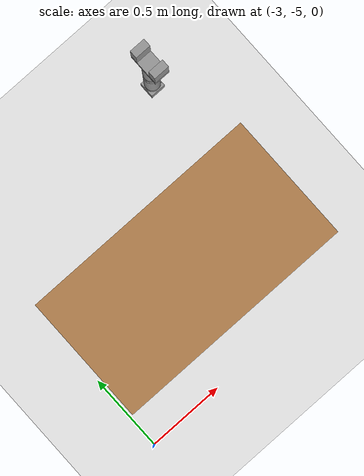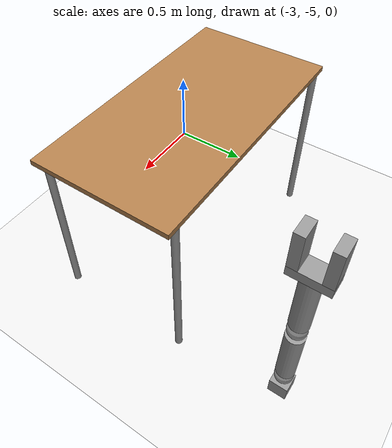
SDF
<sdf version="1.6">
 <world name="default">
  <model name="ground_plane">
   <static>1</static>
   <link name="link">
    <collision name="collision">
     <geometry><plane><normal>0 0 1</normal><size>100 100</size></plane></geometry>
     <surface>
      <contact><collide_bitmask>65535</collide_bitmask></contact>
      <friction><ode><mu>100</mu><mu2>50</mu2></ode></friction>
     </surface>
    </collision>
    <visual name="visual">
     <cast_shadows>0</cast_shadows>
     <geometry><plane><normal>0 0 1</normal><size>100 100</size></plane></geometry>
     <material>
      <script><uri>file://media/materials/scripts/gazebo.material</uri><name>Gazebo/White</name></script>
     </material>
    </visual>
   </link>
  </model>
  <model name="myrobotarm_clone">
   <link name="Base">
    <inertial>
     <mass>1</mass>
     <inertia>
      <ixx>0.166667</ixx>
      <ixy>0</ixy>
      <ixz>0</ixz>
      <iyy>0.166667</iyy>
      <iyz>0</iyz>
      <izz>0.166667</izz>
     </inertia>
    </inertial>
    <pose>1.29977 -2.48919 -0.073664 0 -0 0</pose>
    <visual name="visual">
     <geometry><box><size>0.1 0.1 0.1</size></box></geometry>
     <material>
      <lighting>1</lighting>
      <script><uri>file://media/materials/scripts/gazebo.material</uri><name>Gazebo/Grey</name></script>
      <shader type="pixel"><normal_map>__default__</normal_map></shader>
      <ambient>0.3 0.3 0.3 1</ambient>
      <diffuse>0.7 0.7 0.7 1</diffuse>
      <specular>0.01 0.01 0.01 1</specular>
      <emissive>0 0 0 1</emissive>
     </material>
    </visual>
    <collision name="collision">
     <geometry><box><size>0.1 0.1 0.1</size></box></geometry>
     <surface>
      <friction>
       <ode><mu>1</mu><mu2>1</mu2><fdir1>0 0 0</fdir1><slip1>0</slip1><slip2>0</slip2></ode>
       <torsional>
        <coefficient>1</coefficient>
        <patch_radius>0</patch_radius>
        <surface_radius>0</surface_radius>
        <use_patch_radius>1</use_patch_radius>
        <ode><slip>0</slip></ode>
       </torsional>
      </friction>
      <bounce><restitution_coefficient>0</restitution_coefficient><threshold>1e+06</threshold></bounce>
      <contact>
       <collide_without_contact>0</collide_without_contact>
       <collide_without_contact_bitmask>1</collide_without_contact_bitmask>
       <collide_bitmask>1</collide_bitmask>
       <ode>
        <soft_cfm>0</soft_cfm>
        <soft_erp>0.2</soft_erp>
        <kp>1e+13</kp>
        <kd>1</kd>
        <max_vel>0.01</max_vel>
        <min_depth>0</min_depth>
       </ode>
       <bullet>
        <split_impulse>1</split_impulse>
        <split_impulse_penetration_threshold>-0.01</split_impulse_penetration_threshold>
        <soft_cfm>0</soft_cfm>
        <soft_erp>0.2</soft_erp>
        <kp>1e+13</kp>
        <kd>1</kd>
       </bullet>
      </contact>
     </surface>
    </collision>
   </link>
   <link name="Base_hinge">
    <inertial>
     <mass>1</mass>
     <inertia><ixx>0.1</ixx><ixy>0</ixy><ixz>0</ixz><iyy>0.1</iyy><iyz>0</iyz><izz>0.1</izz></inertia>
    </inertial>
    <pose>1.29977 -2.48919 0.026336 0 -0 0</pose>
    <visual name="visual">
     <geometry><sphere><radius>0.05</radius></sphere></geometry>
     <material>
      <lighting>1</lighting>
      <script><uri>file://media/materials/scripts/gazebo.material</uri><name>Gazebo/Grey</name></script>
      <shader type="pixel"><normal_map>__default__</normal_map></shader>
      <ambient>0.3 0.3 0.3 1</ambient>
      <diffuse>0.7 0.7 0.7 1</diffuse>
      <specular>0.01 0.01 0.01 1</specular>
      <emissive>0 0 0 1</emissive>
     </material>
    </visual>
    <collision name="collision">
     <geometry><sphere><radius>0.05</radius></sphere></geometry>
     <surface>
      <friction>
       <ode><mu>1</mu><mu2>1</mu2><fdir1>0 0 0</fdir1><slip1>0</slip1><slip2>0</slip2></ode>
       <torsional>
        <coefficient>1</coefficient>
        <patch_radius>0</patch_radius>
        <surface_radius>0</surface_radius>
        <use_patch_radius>1</use_patch_radius>
        <ode><slip>0</slip></ode>
       </torsional>
      </friction>
      <bounce><restitution_coefficient>0</restitution_coefficient><threshold>1e+06</threshold></bounce>
      <contact>
       <collide_without_contact>0</collide_without_contact>
       <collide_without_contact_bitmask>1</collide_without_contact_bitmask>
       <collide_bitmask>1</collide_bitmask>
       <ode>
        <soft_cfm>0</soft_cfm>
        <soft_erp>0.2</soft_erp>
        <kp>1e+13</kp>
        <kd>1</kd>
        <max_vel>0.01</max_vel>
        <min_depth>0</min_depth>
       </ode>
       <bullet>
        <split_impulse>1</split_impulse>
        <split_impulse_penetration_threshold>-0.01</split_impulse_penetration_threshold>
        <soft_cfm>0</soft_cfm>
        <soft_erp>0.2</soft_erp>
        <kp>1e+13</kp>
        <kd>1</kd>
       </bullet>
      </contact>
     </surface>
    </collision>
   </link>
   <link name="Gripper_base">
    <inertial>
     <mass>1</mass>
     <inertia>
      <ixx>0.166667</ixx>
      <ixy>0</ixy>
      <ixz>0</ixz>
      <iyy>0.166667</iyy>
      <iyz>0</iyz>
      <izz>0.166667</izz>
     </inertia>
    </inertial>
    <pose>1.29977 -2.48919 0.901336 0 -0 0</pose>
    <visual name="visual">
     <geometry><box><size>0.1 0.2 0.05</size></box></geometry>
     <material>
      <lighting>1</lighting>
      <script><uri>file://media/materials/scripts/gazebo.material</uri><name>Gazebo/Grey</name></script>
      <shader type="vertex"><normal_map>__default__</normal_map></shader>
      <ambient>0.3 0.3 0.3 1</ambient>
      <diffuse>0.7 0.7 0.7 1</diffuse>
      <specular>0.01 0.01 0.01 1</specular>
      <emissive>0 0 0 1</emissive>
     </material>
    </visual>
    <collision name="collision">
     <geometry><box><size>0.1 0.2 0.05</size></box></geometry>
     <surface>
      <friction>
       <ode><mu>1</mu><mu2>1</mu2><fdir1>0 0 0</fdir1><slip1>0</slip1><slip2>0</slip2></ode>
       <torsional>
        <coefficient>1</coefficient>
        <patch_radius>0</patch_radius>
        <surface_radius>0</surface_radius>
        <use_patch_radius>1</use_patch_radius>
        <ode><slip>0</slip></ode>
       </torsional>
      </friction>
      <bounce><restitution_coefficient>0</restitution_coefficient><threshold>1e+06</threshold></bounce>
      <contact>
       <collide_without_contact>0</collide_without_contact>
       <collide_without_contact_bitmask>1</collide_without_contact_bitmask>
       <collide_bitmask>1</collide_bitmask>
       <ode>
        <soft_cfm>0</soft_cfm>
        <soft_erp>0.2</soft_erp>
        <kp>1e+13</kp>
        <kd>1</kd>
        <max_vel>0.01</max_vel>
        <min_depth>0</min_depth>
       </ode>
       <bullet>
        <split_impulse>1</split_impulse>
        <split_impulse_penetration_threshold>-0.01</split_impulse_penetration_threshold>
        <soft_cfm>0</soft_cfm>
        <soft_erp>0.2</soft_erp>
        <kp>1e+13</kp>
        <kd>1</kd>
       </bullet>
      </contact>
     </surface>
    </collision>
   </link>
   <link name="Gripper_left">
    <inertial>
     <mass>1</mass>
     <inertia>
      <ixx>0.166667</ixx>
      <ixy>0</ixy>
      <ixz>0</ixz>
      <iyy>0.166667</iyy>
      <iyz>0</iyz>
      <izz>0.166667</izz>
     </inertia>
    </inertial>
    <pose>1.29977 -2.41418 1.02633 -1.5707 0 0</pose>
    <visual name="visual_0">
     <geometry><box><size>0.1 0.2 0.05</size></box></geometry>
     <material>
      <lighting>1</lighting>
      <script><uri>file://media/materials/scripts/gazebo.material</uri><name>Gazebo/Grey</name></script>
      <shader type="vertex"><normal_map>__default__</normal_map></shader>
      <ambient>0.3 0.3 0.3 1</ambient>
      <diffuse>0.7 0.7 0.7 1</diffuse>
      <specular>0.01 0.01 0.01 1</specular>
      <emissive>0 0 0 1</emissive>
     </material>
    </visual>
    <collision name="collision">
     <geometry><box><size>0.1 0.2 0.05</size></box></geometry>
     <surface>
      <friction>
       <ode><mu>1</mu><mu2>1</mu2><fdir1>0 0 0</fdir1><slip1>0</slip1><slip2>0</slip2></ode>
       <torsional>
        <coefficient>1</coefficient>
        <patch_radius>0</patch_radius>
        <surface_radius>0</surface_radius>
        <use_patch_radius>1</use_patch_radius>
        <ode><slip>0</slip></ode>
       </torsional>
      </friction>
      <bounce><restitution_coefficient>0</restitution_coefficient><threshold>1e+06</threshold></bounce>
      <contact>
       <collide_without_contact>0</collide_without_contact>
       <collide_without_contact_bitmask>1</collide_without_contact_bitmask>
       <collide_bitmask>1</collide_bitmask>
       <ode>
        <soft_cfm>0</soft_cfm>
        <soft_erp>0.2</soft_erp>
        <kp>1e+13</kp>
        <kd>1</kd>
        <max_vel>0.01</max_vel>
        <min_depth>0</min_depth>
       </ode>
       <bullet>
        <split_impulse>1</split_impulse>
        <split_impulse_penetration_threshold>-0.01</split_impulse_penetration_threshold>
        <soft_cfm>0</soft_cfm>
        <soft_erp>0.2</soft_erp>
        <kp>1e+13</kp>
        <kd>1</kd>
       </bullet>
      </contact>
     </surface>
    </collision>
   </link>
   <link name="Gripper_right">
    <inertial>
     <mass>1</mass>
     <inertia>
      <ixx>0.166667</ixx>
      <ixy>0</ixy>
      <ixz>0</ixz>
      <iyy>0.166667</iyy>
      <iyz>0</iyz>
      <izz>0.166667</izz>
     </inertia>
    </inertial>
    <pose>1.29977 -2.56418 1.02633 1.5707 -0 0</pose>
    <visual name="visual_0">
     <geometry><box><size>0.1 0.2 0.05</size></box></geometry>
     <material>
      <lighting>1</lighting>
      <script><uri>file://media/materials/scripts/gazebo.material</uri><name>Gazebo/Grey</name></script>
      <shader type="vertex"><normal_map>__default__</normal_map></shader>
      <ambient>0.3 0.3 0.3 1</ambient>
      <diffuse>0.7 0.7 0.7 1</diffuse>
      <specular>0.01 0.01 0.01 1</specular>
      <emissive>0 0 0 1</emissive>
     </material>
    </visual>
    <collision name="collision">
     <geometry><box><size>0.1 0.2 0.05</size></box></geometry>
     <surface>
      <friction>
       <ode><mu>1</mu><mu2>1</mu2><fdir1>0 0 0</fdir1><slip1>0</slip1><slip2>0</slip2></ode>
       <torsional>
        <coefficient>1</coefficient>
        <patch_radius>0</patch_radius>
        <surface_radius>0</surface_radius>
        <use_patch_radius>1</use_patch_radius>
        <ode><slip>0</slip></ode>
       </torsional>
      </friction>
      <bounce><restitution_coefficient>0</restitution_coefficient><threshold>1e+06</threshold></bounce>
      <contact>
       <collide_without_contact>0</collide_without_contact>
       <collide_without_contact_bitmask>1</collide_without_contact_bitmask>
       <collide_bitmask>1</collide_bitmask>
       <ode>
        <soft_cfm>0</soft_cfm>
        <soft_erp>0.2</soft_erp>
        <kp>1e+13</kp>
        <kd>1</kd>
        <max_vel>0.01</max_vel>
        <min_depth>0</min_depth>
       </ode>
       <bullet>
        <split_impulse>1</split_impulse>
        <split_impulse_penetration_threshold>-0.01</split_impulse_penetration_threshold>
        <soft_cfm>0</soft_cfm>
        <soft_erp>0.2</soft_erp>
        <kp>1e+13</kp>
        <kd>1</kd>
       </bullet>
      </contact>
     </surface>
    </collision>
   </link>
   <link name="Section1">
    <inertial>
     <mass>1</mass>
     <inertia><ixx>0.145833</ixx><ixy>0</ixy><ixz>0</ixz><iyy>0.145833</iyy><iyz>0</iyz><izz>0.125</izz></inertia>
    </inertial>
    <pose>1.29977 -2.48919 0.251336 0 -0 0</pose>
    <visual name="visual">
     <geometry><cylinder><radius>0.05</radius><length>0.35</length></cylinder></geometry>
     <material>
      <lighting>1</lighting>
      <script><uri>file://media/materials/scripts/gazebo.material</uri><name>Gazebo/Grey</name></script>
      <shader type="pixel"><normal_map>__default__</normal_map></shader>
      <ambient>0.3 0.3 0.3 1</ambient>
      <diffuse>0.7 0.7 0.7 1</diffuse>
      <specular>0.01 0.01 0.01 1</specular>
      <emissive>0 0 0 1</emissive>
     </material>
    </visual>
    <collision name="collision">
     <geometry><cylinder><radius>0.05</radius><length>0.35</length></cylinder></geometry>
     <surface>
      <friction>
       <ode><mu>1</mu><mu2>1</mu2><fdir1>0 0 0</fdir1><slip1>0</slip1><slip2>0</slip2></ode>
       <torsional>
        <coefficient>1</coefficient>
        <patch_radius>0</patch_radius>
        <surface_radius>0</surface_radius>
        <use_patch_radius>1</use_patch_radius>
        <ode><slip>0</slip></ode>
       </torsional>
      </friction>
      <bounce><restitution_coefficient>0</restitution_coefficient><threshold>1e+06</threshold></bounce>
      <contact>
       <collide_without_contact>0</collide_without_contact>
       <collide_without_contact_bitmask>1</collide_without_contact_bitmask>
       <collide_bitmask>1</collide_bitmask>
       <ode>
        <soft_cfm>0</soft_cfm>
        <soft_erp>0.2</soft_erp>
        <kp>1e+13</kp>
        <kd>1</kd>
        <max_vel>0.01</max_vel>
        <min_depth>0</min_depth>
       </ode>
       <bullet>
        <split_impulse>1</split_impulse>
        <split_impulse_penetration_threshold>-0.01</split_impulse_penetration_threshold>
        <soft_cfm>0</soft_cfm>
        <soft_erp>0.2</soft_erp>
        <kp>1e+13</kp>
        <kd>1</kd>
       </bullet>
      </contact>
     </surface>
    </collision>
   </link>
   <link name="Section1_hinge">
    <inertial>
     <mass>1</mass>
     <inertia><ixx>0.1</ixx><ixy>0</ixy><ixz>0</ixz><iyy>0.1</iyy><iyz>0</iyz><izz>0.1</izz></inertia>
    </inertial>
    <pose>1.29977 -2.48919 0.476336 0 -0 0</pose>
    <visual name="visual">
     <geometry><sphere><radius>0.05</radius></sphere></geometry>
     <material>
      <lighting>1</lighting>
      <script><uri>file://media/materials/scripts/gazebo.material</uri><name>Gazebo/Grey</name></script>
      <shader type="pixel"><normal_map>__default__</normal_map></shader>
      <ambient>0.3 0.3 0.3 1</ambient>
      <diffuse>0.7 0.7 0.7 1</diffuse>
      <specular>0.01 0.01 0.01 1</specular>
      <emissive>0 0 0 1</emissive>
     </material>
    </visual>
    <collision name="collision">
     <geometry><sphere><radius>0.05</radius></sphere></geometry>
     <surface>
      <friction>
       <ode><mu>1</mu><mu2>1</mu2><fdir1>0 0 0</fdir1><slip1>0</slip1><slip2>0</slip2></ode>
       <torsional>
        <coefficient>1</coefficient>
        <patch_radius>0</patch_radius>
        <surface_radius>0</surface_radius>
        <use_patch_radius>1</use_patch_radius>
        <ode><slip>0</slip></ode>
       </torsional>
      </friction>
      <bounce><restitution_coefficient>0</restitution_coefficient><threshold>1e+06</threshold></bounce>
      <contact>
       <collide_without_contact>0</collide_without_contact>
       <collide_without_contact_bitmask>1</collide_without_contact_bitmask>
       <collide_bitmask>1</collide_bitmask>
       <ode>
        <soft_cfm>0</soft_cfm>
        <soft_erp>0.2</soft_erp>
        <kp>1e+13</kp>
        <kd>1</kd>
        <max_vel>0.01</max_vel>
        <min_depth>0</min_depth>
       </ode>
       <bullet>
        <split_impulse>1</split_impulse>
        <split_impulse_penetration_threshold>-0.01</split_impulse_penetration_threshold>
        <soft_cfm>0</soft_cfm>
        <soft_erp>0.2</soft_erp>
        <kp>1e+13</kp>
        <kd>1</kd>
       </bullet>
      </contact>
     </surface>
    </collision>
   </link>
   <link name="Section2">
    <inertial>
     <mass>1</mass>
     <inertia><ixx>0.145833</ixx><ixy>0</ixy><ixz>0</ixz><iyy>0.145833</iyy><iyz>0</iyz><izz>0.125</izz></inertia>
    </inertial>
    <pose>1.29977 -2.48919 0.701336 0 -0 0</pose>
    <visual name="visual">
     <geometry><cylinder><radius>0.05</radius><length>0.35</length></cylinder></geometry>
     <material>
      <lighting>1</lighting>
      <script><uri>file://media/materials/scripts/gazebo.material</uri><name>Gazebo/Grey</name></script>
      <shader type="pixel"><normal_map>__default__</normal_map></shader>
      <ambient>0.3 0.3 0.3 1</ambient>
      <diffuse>0.7 0.7 0.7 1</diffuse>
      <specular>0.01 0.01 0.01 1</specular>
      <emissive>0 0 0 1</emissive>
     </material>
    </visual>
    <collision name="collision">
     <geometry><cylinder><radius>0.05</radius><length>0.35</length></cylinder></geometry>
     <surface>
      <friction>
       <ode><mu>1</mu><mu2>1</mu2><fdir1>0 0 0</fdir1><slip1>0</slip1><slip2>0</slip2></ode>
       <torsional>
        <coefficient>1</coefficient>
        <patch_radius>0</patch_radius>
        <surface_radius>0</surface_radius>
        <use_patch_radius>1</use_patch_radius>
        <ode><slip>0</slip></ode>
       </torsional>
      </friction>
      <bounce><restitution_coefficient>0</restitution_coefficient><threshold>1e+06</threshold></bounce>
      <contact>
       <collide_without_contact>0</collide_without_contact>
       <collide_without_contact_bitmask>1</collide_without_contact_bitmask>
       <collide_bitmask>1</collide_bitmask>
       <ode>
        <soft_cfm>0</soft_cfm>
        <soft_erp>0.2</soft_erp>
        <kp>1e+13</kp>
        <kd>1</kd>
        <max_vel>0.01</max_vel>
        <min_depth>0</min_depth>
       </ode>
       <bullet>
        <split_impulse>1</split_impulse>
        <split_impulse_penetration_threshold>-0.01</split_impulse_penetration_threshold>
        <soft_cfm>0</soft_cfm>
        <soft_erp>0.2</soft_erp>
        <kp>1e+13</kp>
        <kd>1</kd>
       </bullet>
      </contact>
     </surface>
    </collision>
   </link>
   <joint name="Fix1" type="fixed">
    <parent>Section1</parent>
    <child>Section1_hinge</child>
    <physics>
     <ode><limit><cfm>0</cfm><erp>0.2</erp></limit><suspension><cfm>0</cfm><erp>0.2</erp></suspension></ode>
    </physics>
   </joint>
   <joint name="Gripper_J_left" type="prismatic">
    <parent>Gripper_base</parent>
    <child>Gripper_right</child>
    <axis>
     <xyz>0 0 1</xyz>
     <use_parent_model_frame>0</use_parent_model_frame>
     <limit>
      <lower>-1.79769e+308</lower>
      <upper>1.79769e+308</upper>
      <effort>-1</effort>
      <velocity>-1</velocity>
     </limit>
     <dynamics>
      <spring_reference>0</spring_reference>
      <spring_stiffness>0</spring_stiffness>
      <damping>0</damping>
      <friction>3</friction>
     </dynamics>
    </axis>
    <physics>
     <ode><limit><cfm>0</cfm><erp>0.2</erp></limit><suspension><cfm>0</cfm><erp>0.2</erp></suspension></ode>
    </physics>
   </joint>
   <joint name="Gripper_J_right" type="prismatic">
    <parent>Gripper_base</parent>
    <child>Gripper_left</child>
    <axis>
     <xyz>0 0 1</xyz>
     <use_parent_model_frame>0</use_parent_model_frame>
     <limit>
      <lower>-1.79769e+308</lower>
      <upper>1.79769e+308</upper>
      <effort>-1</effort>
      <velocity>-1</velocity>
     </limit>
     <dynamics>
      <spring_reference>0</spring_reference>
      <spring_stiffness>0</spring_stiffness>
      <damping>0</damping>
      <friction>3</friction>
     </dynamics>
    </axis>
    <physics>
     <ode><limit><cfm>0</cfm><erp>0.2</erp></limit><suspension><cfm>0</cfm><erp>0.2</erp></suspension></ode>
    </physics>
   </joint>
   <joint name="J1" type="revolute">
    <parent>Base</parent>
    <child>Base_hinge</child>
    <axis>
     <xyz>0 0 1</xyz>
     <use_parent_model_frame>0</use_parent_model_frame>
     <limit>
      <lower>-1.79769e+308</lower>
      <upper>1.79769e+308</upper>
      <effort>-1</effort>
      <velocity>-1</velocity>
     </limit>
     <dynamics>
      <spring_reference>0</spring_reference>
      <spring_stiffness>0</spring_stiffness>
      <damping>0</damping>
      <friction>3</friction>
     </dynamics>
    </axis>
    <physics>
     <ode><limit><cfm>0</cfm><erp>0.2</erp></limit><suspension><cfm>0</cfm><erp>0.2</erp></suspension></ode>
    </physics>
   </joint>
   <joint name="J2" type="revolute">
    <parent>Section1</parent>
    <child>Base_hinge</child>
    <axis>
     <xyz>0 1 0</xyz>
     <use_parent_model_frame>0</use_parent_model_frame>
     <limit>
      <lower>-1.79769e+308</lower>
      <upper>1.79769e+308</upper>
      <effort>-1</effort>
      <velocity>-1</velocity>
     </limit>
     <dynamics>
      <spring_reference>0</spring_reference>
      <spring_stiffness>0</spring_stiffness>
      <damping>0</damping>
      <friction>3</friction>
     </dynamics>
    </axis>
    <physics>
     <ode><limit><cfm>0</cfm><erp>0.2</erp></limit><suspension><cfm>0</cfm><erp>0.2</erp></suspension></ode>
    </physics>
   </joint>
   <joint name="J3" type="revolute">
    <parent>Section2</parent>
    <child>Section1_hinge</child>
    <axis>
     <xyz>0 1 0</xyz>
     <use_parent_model_frame>0</use_parent_model_frame>
     <limit>
      <lower>-1.79769e+308</lower>
      <upper>1.79769e+308</upper>
      <effort>-1</effort>
      <velocity>-1</velocity>
     </limit>
     <dynamics>
      <spring_reference>0</spring_reference>
      <spring_stiffness>0</spring_stiffness>
      <damping>0</damping>
      <friction>3</friction>
     </dynamics>
    </axis>
    <physics>
     <ode><limit><cfm>0</cfm><erp>0.2</erp></limit><suspension><cfm>0</cfm><erp>0.2</erp></suspension></ode>
    </physics>
   </joint>
   <joint name="J4" type="revolute">
    <parent>Gripper_base</parent>
    <child>Section2</child>
    <axis>
     <xyz>0 0 1</xyz>
     <use_parent_model_frame>0</use_parent_model_frame>
     <limit>
      <lower>-1.79769e+308</lower>
      <upper>1.79769e+308</upper>
      <effort>-1</effort>
      <velocity>-1</velocity>
     </limit>
     <dynamics>
      <spring_reference>0</spring_reference>
      <spring_stiffness>0</spring_stiffness>
      <damping>0</damping>
      <friction>3</friction>
     </dynamics>
    </axis>
    <physics>
     <ode><limit><cfm>0</cfm><erp>0.2</erp></limit><suspension><cfm>0</cfm><erp>0.2</erp></suspension></ode>
    </physics>
   </joint>
   <static>0</static>
   <pose>-2.89457 -0.918577 0.125753 0.000825 -5e-06 -0.001281</pose>
  </model>
  <model name="table_clone">
   <static>1</static>
   <link name="link">
    <collision name="surface">
     <pose>0 0 1 0 -0 0</pose>
     <geometry><box><size>1.5 0.8 0.03</size></box></geometry>
     <surface><friction><ode><mu>0.6</mu><mu2>0.6</mu2></ode></friction></surface>
    </collision>
    <visual name="visual1">
     <pose>0 0 1 0 -0 0</pose>
     <geometry><box><size>1.5 0.8 0.03</size></box></geometry>
     <material>
      <script><uri>file://media/materials/scripts/gazebo.material</uri><name>Gazebo/Wood</name></script>
     </material>
    </visual>
    <collision name="front_left_leg">
     <pose>0.68 0.38 0.5 0 -0 0</pose>
     <geometry><cylinder><radius>0.02</radius><length>1</length></cylinder></geometry>
    </collision>
    <visual name="front_left_leg">
     <pose>0.68 0.38 0.5 0 -0 0</pose>
     <geometry><cylinder><radius>0.02</radius><length>1</length></cylinder></geometry>
     <material>
      <script><uri>file://media/materials/scripts/gazebo.material</uri><name>Gazebo/Grey</name></script>
     </material>
    </visual>
    <collision name="front_right_leg">
     <pose>0.68 -0.38 0.5 0 -0 0</pose>
     <geometry><cylinder><radius>0.02</radius><length>1</length></cylinder></geometry>
    </collision>
    <visual name="front_right_leg">
     <pose>0.68 -0.38 0.5 0 -0 0</pose>
     <geometry><cylinder><radius>0.02</radius><length>1</length></cylinder></geometry>
     <material>
      <script><uri>file://media/materials/scripts/gazebo.material</uri><name>Gazebo/Grey</name></script>
     </material>
    </visual>
    <collision name="back_right_leg">
     <pose>-0.68 -0.38 0.5 0 -0 0</pose>
     <geometry><cylinder><radius>0.02</radius><length>1</length></cylinder></geometry>
    </collision>
    <visual name="back_right_leg">
     <pose>-0.68 -0.38 0.5 0 -0 0</pose>
     <geometry><cylinder><radius>0.02</radius><length>1</length></cylinder></geometry>
     <material>
      <script><uri>file://media/materials/scripts/gazebo.material</uri><name>Gazebo/Grey</name></script>
     </material>
    </visual>
    <collision name="back_left_leg">
     <pose>-0.68 0.38 0.5 0 -0 0</pose>
     <geometry><cylinder><radius>0.02</radius><length>1</length></cylinder></geometry>
    </collision>
    <visual name="back_left_leg">
     <pose>-0.68 0.38 0.5 0 -0 0</pose>
     <geometry><cylinder><radius>0.02</radius><length>1</length></cylinder></geometry>
     <material>
      <script><uri>file://media/materials/scripts/gazebo.material</uri><name>Gazebo/Grey</name></script>
     </material>
    </visual>
   </link>
   <pose>-2.19041 -4.37801 0 0 -0 0</pose>
  </model>
 </world>
</sdf>
